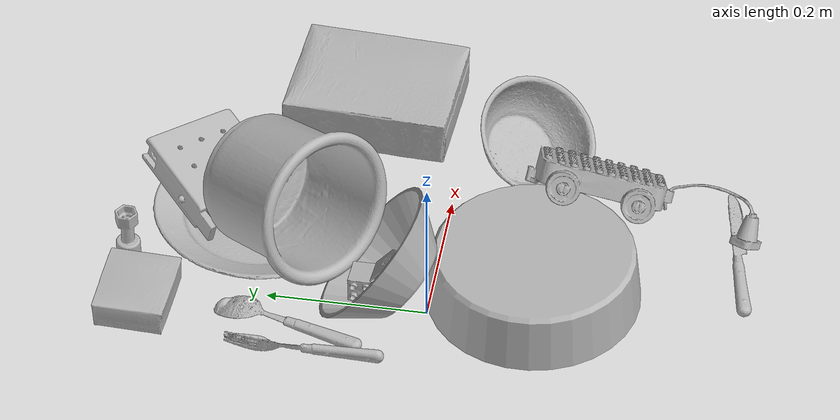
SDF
<sdf version="1.4">
  <world name="default">
    <light name="light1" type="point">
      <pose>0 0 1 0 0 0</pose>
      <diffuse>3 3 3 1</diffuse>
      <specular>3 3 3 1</specular>
    </light>
    <light name="light2" type="point">
      <pose>0 0.5 2 0 0 0</pose>
      <diffuse>1 1 1 1</diffuse>
      <specular>1 1 1 1</specular>
    </light>
    <light name="light3" type="point">
      <pose>0 0.5 2 0 0 0</pose>
      <diffuse>3 3 3 1</diffuse>
      <specular>3 3 3 1</specular>
    </light>
    <scene>
      <ambient>0.7 0.7 0.7</ambient>
    </scene>
    <model name="plate1">
      <link name="link_plate1">
        <collision name="default">
          <geometry>
            <mesh>
              <uri>model://plate/collision_meshes/collision.obj</uri>
              <scale>1.0 1.0 1.0</scale>
            </mesh>
          </geometry>
          <surface>
            <friction>
              <ode>
                <mu>0.5</mu>
                <mu2>0.5</mu2>
              </ode>
            </friction>
          <contact>
        <ode>
            <max_vel>0</max_vel>
            <min_depth>0.0001</min_depth>
            <kp>1e8</kp>
        </ode>
    </contact></surface>
        </collision>
        <visual name="default">
          <geometry>
            <mesh>
              <uri>model://plate/visual_meshes/visual.dae</uri>
              <scale>1.0 1.0 1.0</scale>
            </mesh>
          </geometry>
        </visual>
        <inertial>
          <mass>0.2518167495727539</mass>
          <pose>-0.000604460306931287 0.0002782583760563284 -0.001056198962032795 0.0022187362427659595 -0.003225514577586686 0.4526257716004426</pose>
          <inertia>
            <ixx>0.0011780038</ixx>
            <iyy>0.001166737</iyy>
            <izz>0.0023039998</izz>
            <ixy>0</ixy>
            <ixz>0</ixz>
            <iyz>0</iyz>
          </inertia>
        </inertial>
      </link>
      <pose>0.12446923553943634 0.23465177416801453 0.017583224922418594 0.016593639408357296 -0.05341351442107073 1.8773505477159091</pose>
    </model>
    <model name="plate2">
      <link name="link_plate2">
        <collision name="default">
          <geometry>
            <mesh>
              <uri>model://pan_tefal/collision_meshes/collision.obj</uri>
              <scale>1.0 1.0 1.0</scale>
            </mesh>
          </geometry>
          <surface>
            <friction>
              <ode>
                <mu>0.5</mu>
                <mu2>0.5</mu2>
              </ode>
            </friction>
          <contact>
        <ode>
            <max_vel>0</max_vel>
            <min_depth>0.0001</min_depth>
            <kp>1e8</kp>
        </ode>
    </contact></surface>
        </collision>
        <visual name="default">
          <geometry>
            <mesh>
              <uri>model://pan_tefal/visual_meshes/visual.dae</uri>
              <scale>1.0 1.0 1.0</scale>
            </mesh>
          </geometry>
        </visual>
        <inertial>
          <mass>1.062379002571106</mass>
          <pose>-0.00018001841090153903 3.2791107514640316e-05 -0.008514937944710255 0.0008190335190592257 -0.00033013878845789875 -0.3318630487039029</pose>
          <inertia>
            <ixx>0.0073335525</ixx>
            <iyy>0.007380832</iyy>
            <izz>0.013499655</izz>
            <ixy>0</ixy>
            <ixz>0</ixz>
            <iyz>0</iyz>
          </inertia>
        </inertial>
      </link>
      <pose>0.05294884368777275 -0.12412847578525543 0.03782200068235397 3.141591721970189 1.3625579379410783e-07 0.514907653403927</pose>
    </model>
    <model name="bowl1">
      <link name="link_bowl1">
        <collision name="default">
          <geometry>
            <mesh>
              <uri>model://bowl/collision_meshes/collision.obj</uri>
              <scale>1.0 1.0 1.0</scale>
            </mesh>
          </geometry>
          <surface>
            <friction>
              <ode>
                <mu>0.5</mu>
                <mu2>0.5</mu2>
              </ode>
            </friction>
          <contact>
        <ode>
            <max_vel>0</max_vel>
            <min_depth>0.0001</min_depth>
            <kp>1e8</kp>
        </ode>
    </contact></surface>
        </collision>
        <visual name="default">
          <geometry>
            <mesh>
              <uri>model://bowl/visual_meshes/visual.dae</uri>
              <scale>1.0 1.0 1.0</scale>
            </mesh>
          </geometry>
        </visual>
        <inertial>
          <mass>0.06917417049407959</mass>
          <pose>0.00020445069822017103 -0.0010302119189873338 -0.0008042645640671253 -0.015764106225313407 0.014546789960746879 0.7140402093907182</pose>
          <inertia>
            <ixx>0.00015889853</ixx>
            <iyy>0.00015534814</iyy>
            <izz>0.000267322</izz>
            <ixy>0</ixy>
            <ixz>0</ixz>
            <iyz>0</iyz>
          </inertia>
        </inertial>
      </link>
      <pose>0.27722305059432983 -0.0866658017039299 0.04889996349811554 -0.36214907750406833 -0.5443592925292138 1.5848069389300297</pose>
    </model>
    <model name="bowl2">
      <link name="link_bowl2">
        <collision name="default">
          <geometry>
            <mesh>
              <uri>model://bowl_a/collision_meshes/collision.obj</uri>
              <scale>1.0 1.0 1.0</scale>
            </mesh>
          </geometry>
          <surface>
            <friction>
              <ode>
                <mu>0.5</mu>
                <mu2>0.5</mu2>
              </ode>
            </friction>
          <contact>
        <ode>
            <max_vel>0</max_vel>
            <min_depth>0.0001</min_depth>
            <kp>1e8</kp>
        </ode>
    </contact></surface>
        </collision>
        <visual name="default">
          <geometry>
            <mesh>
              <uri>model://bowl_a/visual_meshes/visual.dae</uri>
              <scale>1.0 1.0 1.0</scale>
            </mesh>
          </geometry>
        </visual>
        <inertial>
          <mass>0.33581992983818054</mass>
          <pose>0.00027867587050423026 4.7312365495599806e-05 -0.0013765293406322598 -0.0009805275277335347 -0.0010938264345752996 -0.19124334191203107</pose>
          <inertia>
            <ixx>0.00095609494</ixx>
            <iyy>0.0009619646</iyy>
            <izz>0.0017004515</izz>
            <ixy>0</ixy>
            <ixz>0</ixz>
            <iyz>0</iyz>
          </inertia>
        </inertial>
      </link>
      <pose>0.00963593926280737 0.048122089356184006 0.062786765396595 -0.1764159205010878 -0.8946907074393111 -1.4368660658354728</pose>
    </model>
    <model name="silverware1">
      <link name="link_silverware1">
        <collision name="default">
          <geometry>
            <mesh>
              <uri>model://spoon/collision_meshes/collision.obj</uri>
              <scale>1.0 1.0 1.0</scale>
            </mesh>
          </geometry>
          <surface>
            <friction>
              <ode>
                <mu>0.5</mu>
                <mu2>0.5</mu2>
              </ode>
            </friction>
          <contact>
        <ode>
            <max_vel>0</max_vel>
            <min_depth>0.0001</min_depth>
            <kp>1e8</kp>
        </ode>
    </contact></surface>
        </collision>
        <visual name="default">
          <geometry>
            <mesh>
              <uri>model://spoon/visual_meshes/visual.dae</uri>
              <scale>1.0 1.0 1.0</scale>
            </mesh>
          </geometry>
        </visual>
        <inertial>
          <mass>0.02635110728442669</mass>
          <pose>-0.005526317283511162 -0.0016034177970141172 -0.0007271651993505657 0.03521639754710896 -0.03906583271405073 0.0061506130160543454</pose>
          <inertia>
            <ixx>1.4656912e-06</ixx>
            <iyy>0.0001002651</iyy>
            <izz>0.00010098792</izz>
            <ixy>0</ixy>
            <ixz>0</ixz>
            <iyz>0</iyz>
          </inertia>
        </inertial>
      </link>
      <pose>-0.05159779638051987 0.16434374451637268 0.010132881812751293 3.1052725852739584 -0.06198883495727434 1.3364172952222737</pose>
    </model>
    <model name="box1">
      <link name="link_box1">
        <collision name="default">
          <geometry>
            <mesh>
              <uri>model://cracker_box/collision_meshes/collision.obj</uri>
              <scale>1.0 1.0 1.0</scale>
            </mesh>
          </geometry>
          <surface>
            <friction>
              <ode>
                <mu>0.5</mu>
                <mu2>0.5</mu2>
              </ode>
            </friction>
          <contact>
        <ode>
            <max_vel>0</max_vel>
            <min_depth>0.0001</min_depth>
            <kp>1e8</kp>
        </ode>
    </contact></surface>
        </collision>
        <visual name="default">
          <geometry>
            <mesh>
              <uri>model://cracker_box/visual_meshes/visual.dae</uri>
              <scale>1.0 1.0 1.0</scale>
            </mesh>
          </geometry>
        </visual>
        <inertial>
          <mass>1.9942995309829712</mass>
          <pose>0.0009464178583584726 0.00025434247800149024 -0.0017029533628374338 -0.00031620747948387436 -0.011106490532043566 0.0025467943028284904</pose>
          <inertia>
            <ixx>0.005072607</ixx>
            <iyy>0.008375872</iyy>
            <izz>0.011953138</izz>
            <ixy>0</ixy>
            <ixz>0</ixz>
            <iyz>0</iyz>
          </inertia>
        </inertial>
      </link>
      <pose>0.3533518612384796 0.12287719547748566 0.035531237721443176 3.1372094387920337 -0.016541617505129516 1.5168562980981248</pose>
    </model>
    <model name="box2">
      <link name="link_box2">
        <collision name="default">
          <geometry>
            <mesh>
              <uri>model://pudding_box/collision_meshes/collision.obj</uri>
              <scale>1.0 1.0 1.0</scale>
            </mesh>
          </geometry>
          <surface>
            <friction>
              <ode>
                <mu>0.5</mu>
                <mu2>0.5</mu2>
              </ode>
            </friction>
          <contact>
        <ode>
            <max_vel>0</max_vel>
            <min_depth>0.0001</min_depth>
            <kp>1e8</kp>
        </ode>
    </contact></surface>
        </collision>
        <visual name="default">
          <geometry>
            <mesh>
              <uri>model://pudding_box/visual_meshes/visual.dae</uri>
              <scale>1.0 1.0 1.0</scale>
            </mesh>
          </geometry>
        </visual>
        <inertial>
          <mass>0.5201411247253418</mass>
          <pose>0.0004894821904599667 0.0008067885646596551 -0.0005188828217796981 0.00521310178321913 -0.006603799649863257 0.020079825157321304</pose>
          <inertia>
            <ixx>0.0005879929</ixx>
            <iyy>0.00039560578</iyy>
            <izz>0.00086832506</izz>
            <ixy>0</ixy>
            <ixz>0</ixz>
            <iyz>0</iyz>
          </inertia>
        </inertial>
      </link>
      <pose>-0.03637341409921646 0.35443636775016785 0.01972585916519165 0.022341794805979285 -0.01136075209618143 1.5483666601389903</pose>
    </model>
    <model name="cup1">
      <link name="link_cup1">
        <collision name="default">
          <geometry>
            <mesh>
              <uri>model://i_cups/collision_meshes/collision.obj</uri>
              <scale>2.0 2.0 2.0</scale>
            </mesh>
          </geometry>
          <surface>
            <friction>
              <ode>
                <mu>0.5</mu>
                <mu2>0.5</mu2>
              </ode>
            </friction>
          <contact>
        <ode>
            <max_vel>0</max_vel>
            <min_depth>0.0001</min_depth>
            <kp>1e8</kp>
        </ode>
    </contact></surface>
        </collision>
        <visual name="default">
          <geometry>
            <mesh>
              <uri>model://i_cups/visual_meshes/visual.dae</uri>
              <scale>2.0 2.0 2.0</scale>
            </mesh>
          </geometry>
        </visual>
        <inertial>
          <mass>0.946932315826416</mass>
          <pose>0.00022480011102743447 0.0003359477559570223 -0.0017158038681373 -0.02898277199923076 -0.03987335280003036 -0.34591530516328983</pose>
          <inertia>
            <ixx>0.005244167</ixx>
            <iyy>0.0052903723</iyy>
            <izz>0.005861205</izz>
            <ixy>0</ixy>
            <ixz>0</ixz>
            <iyz>0</iyz>
          </inertia>
        </inertial>
      </link>
      <pose>0.08088817447423935 0.18540510535240173 0.10240548104047775 -1.3117372139351864 -0.41462253222867135 2.373126607708535</pose>
    </model>
    <model name="silverware2">
      <link name="link_silverware2">
        <collision name="default">
          <geometry>
            <mesh>
              <uri>model://fork/collision_meshes/collision.obj</uri>
              <scale>1.0 1.0 1.0</scale>
            </mesh>
          </geometry>
          <surface>
            <friction>
              <ode>
                <mu>0.5</mu>
                <mu2>0.5</mu2>
              </ode>
            </friction>
          <contact>
        <ode>
            <max_vel>0</max_vel>
            <min_depth>0.0001</min_depth>
            <kp>1e8</kp>
        </ode>
    </contact></surface>
        </collision>
        <visual name="default">
          <geometry>
            <mesh>
              <uri>model://fork/visual_meshes/visual.dae</uri>
              <scale>1.0 1.0 1.0</scale>
            </mesh>
          </geometry>
        </visual>
        <inertial>
          <mass>0.03207480534911156</mass>
          <pose>-0.02957005240023136 0.00046588238910771906 0.0003218861820641905 -0.013551414501779666 -0.010977842682601763 0.014453906756127453</pose>
          <inertia>
            <ixx>1.1244033e-06</ixx>
            <iyy>8.373807e-05</iyy>
            <izz>8.424099e-05</izz>
            <ixy>0</ixy>
            <ixz>0</ixz>
            <iyz>0</iyz>
          </inertia>
        </inertial>
      </link>
      <pose>-0.09580477327108383 0.13668422400951385 0.011520066298544407 1.3856780694537232 -0.027312769101102603 1.6123374531174406</pose>
    </model>
    <model name="silverware3">
      <link name="link_silverware3">
        <collision name="default">
          <geometry>
            <mesh>
              <uri>model://knife/collision_meshes/collision.obj</uri>
              <scale>1.0 1.0 1.0</scale>
            </mesh>
          </geometry>
          <surface>
            <friction>
              <ode>
                <mu>0.5</mu>
                <mu2>0.5</mu2>
              </ode>
            </friction>
          <contact>
        <ode>
            <max_vel>0</max_vel>
            <min_depth>0.0001</min_depth>
            <kp>1e8</kp>
        </ode>
    </contact></surface>
        </collision>
        <visual name="default">
          <geometry>
            <mesh>
              <uri>model://knife/visual_meshes/visual.dae</uri>
              <scale>1.0 1.0 1.0</scale>
            </mesh>
          </geometry>
        </visual>
        <inertial>
          <mass>0.02260335348546505</mass>
          <pose>-0.023785259574651718 0.0015275129117071629 5.062025593360886e-05 0.073049853839256 0.017248417767033373 -0.0074098225522862896</pose>
          <inertia>
            <ixx>6.41575e-07</ixx>
            <iyy>8.6838445e-05</iyy>
            <izz>8.704508e-05</izz>
            <ixy>0</ixy>
            <ixz>0</ixz>
            <iyz>0</iyz>
          </inertia>
        </inertial>
      </link>
      <pose>0.15696462988853455 -0.36723482608795166 0.007817498408257961 0.2160153829039318 -0.013896965844472161 0.17456955014278638</pose>
    </model>
    <model name="toy1">
      <link name="link_toy1">
        <collision name="default">
          <geometry>
            <mesh>
              <uri>model://nine_hole_peg_test/collision_meshes/collision.obj</uri>
              <scale>1.0 1.0 1.0</scale>
            </mesh>
          </geometry>
          <surface>
            <friction>
              <ode>
                <mu>0.5</mu>
                <mu2>0.5</mu2>
              </ode>
            </friction>
          <contact>
        <ode>
            <max_vel>0</max_vel>
            <min_depth>0.0001</min_depth>
            <kp>1e8</kp>
        </ode>
    </contact></surface>
        </collision>
        <visual name="default">
          <geometry>
            <mesh>
              <uri>model://nine_hole_peg_test/visual_meshes/visual.dae</uri>
              <scale>1.0 1.0 1.0</scale>
            </mesh>
          </geometry>
        </visual>
        <inertial>
          <mass>0.3368244469165802</mass>
          <pose>-0.0046173869632184505 -0.009647615253925323 2.6460689696250483e-05 -0.001466679946039042 0.000719417968587533 -0.6342416610336568</pose>
          <inertia>
            <ixx>0.00052668044</ixx>
            <iyy>0.000491756</iyy>
            <izz>0.00092289934</izz>
            <ixy>0</ixy>
            <ixz>0</ixz>
            <iyz>0</iyz>
          </inertia>
        </inertial>
      </link>
      <pose>0.15862467885017395 0.29733455181121826 0.044495683163404465 -0.2475129325070332 -0.11418354477766232 2.3787982899081914</pose>
    </model>
    <model name="toy2">
      <link name="link_toy2">
        <collision name="default">
          <geometry>
            <mesh>
              <uri>model://c_toy_airplane/collision_meshes/collision.obj</uri>
              <scale>1.0 1.0 1.0</scale>
            </mesh>
          </geometry>
          <surface>
            <friction>
              <ode>
                <mu>0.5</mu>
                <mu2>0.5</mu2>
              </ode>
            </friction>
          <contact>
        <ode>
            <max_vel>0</max_vel>
            <min_depth>0.0001</min_depth>
            <kp>1e8</kp>
        </ode>
    </contact></surface>
        </collision>
        <visual name="default">
          <geometry>
            <mesh>
              <uri>model://c_toy_airplane/visual_meshes/visual.dae</uri>
              <scale>1.0 1.0 1.0</scale>
            </mesh>
          </geometry>
        </visual>
        <inertial>
          <mass>0.025849465280771255</mass>
          <pose>-0.000230242803809233 -4.4294804979472246e-07 -0.006080531980842352 -0.006193997552816779 -0.016797268968147806 0.7655666586292194</pose>
          <inertia>
            <ixx>1.1869546e-05</ixx>
            <iyy>1.1836047e-05</iyy>
            <izz>2.7867347e-06</izz>
            <ixy>0</ixy>
            <ixz>0</ixz>
            <iyz>0</iyz>
          </inertia>
        </inertial>
      </link>
      <pose>0.05079369246959686 0.3841460347175598 0.03351236879825592 -8.025372896843316e-05 0.00011471780323800978 -2.388337148139065</pose>
    </model>
    <model name="toy3">
      <link name="link_toy3">
        <collision name="default">
          <geometry>
            <mesh>
              <uri>model://g_lego_duplo/collision_meshes/collision.obj</uri>
              <scale>1.0 1.0 1.0</scale>
            </mesh>
          </geometry>
          <surface>
            <friction>
              <ode>
                <mu>0.5</mu>
                <mu2>0.5</mu2>
              </ode>
            </friction>
          <contact>
        <ode>
            <max_vel>0</max_vel>
            <min_depth>0.0001</min_depth>
            <kp>1e8</kp>
        </ode>
    </contact></surface>
        </collision>
        <visual name="default">
          <geometry>
            <mesh>
              <uri>model://g_lego_duplo/visual_meshes/visual.dae</uri>
              <scale>1.0 1.0 1.0</scale>
            </mesh>
          </geometry>
        </visual>
        <inertial>
          <mass>0.44857048988342285</mass>
          <pose>-0.05004768818616867 0.0017554624937474728 0.0038806761149317026 0.010962989380518968 0.03810827633819491 -0.09653029550410545</pose>
          <inertia>
            <ixx>0.0006499838</ixx>
            <iyy>0.00196511</iyy>
            <izz>0.0024584262</izz>
            <ixy>0</ixy>
            <ixz>0</ixz>
            <iyz>0</iyz>
          </inertia>
        </inertial>
      </link>
      <pose>0.19568200409412384 -0.24540887773036957 0.05656411498785019 -0.5575968939324429 0.21197222861493545 -1.5352111247443136</pose>
    </model>
    <model name="toy4">
      <link name="link_toy4">
        <collision name="default">
          <geometry>
            <mesh>
              <uri>model://b_lego_duplo/collision_meshes/collision.obj</uri>
              <scale>1.0 1.0 1.0</scale>
            </mesh>
          </geometry>
          <surface>
            <friction>
              <ode>
                <mu>0.5</mu>
                <mu2>0.5</mu2>
              </ode>
            </friction>
          <contact>
        <ode>
            <max_vel>0</max_vel>
            <min_depth>0.0001</min_depth>
            <kp>1e8</kp>
        </ode>
    </contact></surface>
        </collision>
        <visual name="default">
          <geometry>
            <mesh>
              <uri>model://b_lego_duplo/visual_meshes/visual.dae</uri>
              <scale>1.0 1.0 1.0</scale>
            </mesh>
          </geometry>
        </visual>
        <inertial>
          <mass>0.028142115101218224</mass>
          <pose>-0.00011053047637687996 -9.15253895072965e-06 0.0019294291269034147 -0.03749502345465157 -0.02635389323626884 0.4519044936865358</pose>
          <inertia>
            <ixx>5.759495e-06</ixx>
            <iyy>5.798213e-06</iyy>
            <izz>5.1315224e-06</izz>
            <ixy>0</ixy>
            <ixz>0</ixz>
            <iyz>0</iyz>
          </inertia>
        </inertial>
      </link>
      <pose>0.010000037029385567 0.08133386075496674 0.02992006205022335 -1.478772207607688 0.024051404167008336 1.5453141879191539</pose>
    </model>
    <model name="toy5">
      <link name="link_toy5">
        <collision name="default">
          <geometry>
            <mesh>
              <uri>model://d_lego_duplo/collision_meshes/collision.obj</uri>
              <scale>1.0 1.0 1.0</scale>
            </mesh>
          </geometry>
          <surface>
            <friction>
              <ode>
                <mu>0.5</mu>
                <mu2>0.5</mu2>
              </ode>
            </friction>
          <contact>
        <ode>
            <max_vel>0</max_vel>
            <min_depth>0.0001</min_depth>
            <kp>1e8</kp>
        </ode>
    </contact></surface>
        </collision>
        <visual name="default">
          <geometry>
            <mesh>
              <uri>model://d_lego_duplo/visual_meshes/visual.dae</uri>
              <scale>1.0 1.0 1.0</scale>
            </mesh>
          </geometry>
        </visual>
        <inertial>
          <mass>0.03456217050552368</mass>
          <pose>0.00283056334592402 0.00016366186900995672 0.0008589798817411065 0.08010865489808279 -0.3835519084219494 0.001029683970252444</pose>
          <inertia>
            <ixx>6.6907255e-06</ixx>
            <iyy>9.495956e-06</iyy>
            <izz>9.1575175e-06</izz>
            <ixy>0</ixy>
            <ixz>0</ixz>
            <iyz>0</iyz>
          </inertia>
        </inertial>
      </link>
      <pose>0.013382074423134327 0.04150869697332382 0.056328922510147095 1.724607551737705 0.8487385816926961 1.6322270802661256</pose>
    </model>
  <physics type="ode">
      <max_contacts>50</max_contacts>
      <ode>
        <solver>
          <type>quick</type>
          <iters>75</iters>
        </solver>
        <constraints>
          <contact_max_correcting_vel>0</contact_max_correcting_vel>
          <contact_surface_layer>0</contact_surface_layer>
        </constraints>
      </ode>
    </physics></world>
</sdf>
